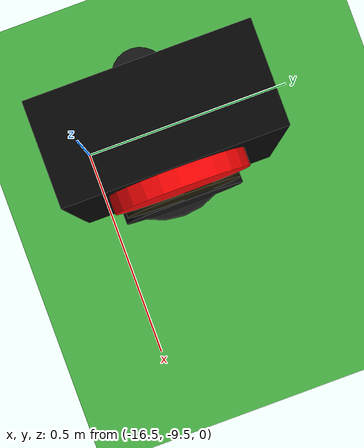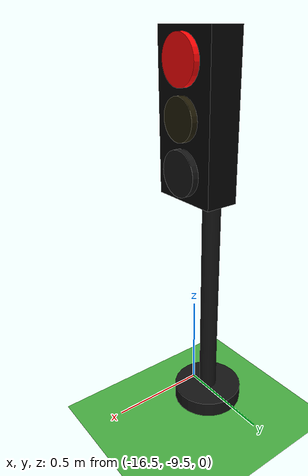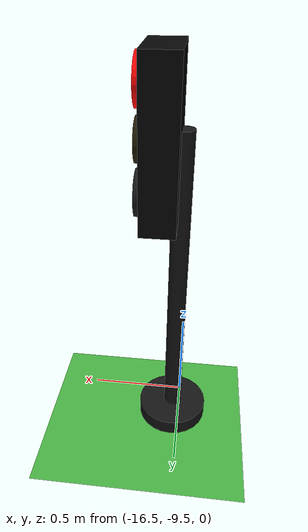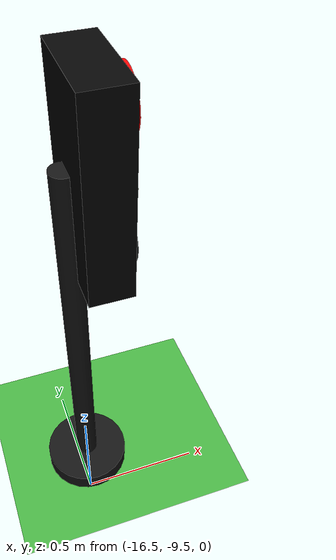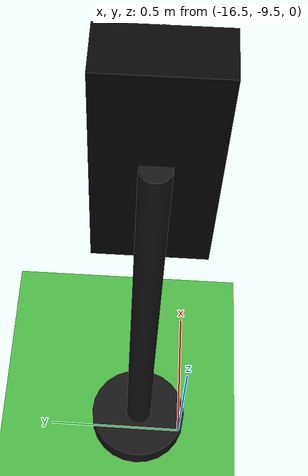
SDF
<sdf version="1.10">
 <world name="city_second">
  <model name="ground_plane">
   <static>true</static>
   <link name="link">
    <collision name="collision">
     <geometry><plane><normal>0 0 1</normal><size>300 300</size></plane></geometry>
    </collision>
    <visual name="visual">
     <geometry><plane><normal>0 0 1</normal><size>300 300</size></plane></geometry>
     <material>
      <ambient>0.280000001 0.689999998 0.25999999 1</ambient>
      <diffuse>0.280000001 0.689999998 0.25999999 1</diffuse>
      <specular>0.0299999993 0.0299999993 0.0299999993 1</specular>
     </material>
    </visual>
    <inertial>
     <mass>1</mass>
     <inertia><ixx>1</ixx><ixy>0</ixy><ixz>0</ixz><iyy>1</iyy><iyz>0</iyz><izz>1</izz></inertia>
    </inertial>
   </link>
  </model>
  <model name="simple_traffic_light_red_east_1">
   <static>true</static>
   <pose>-16.46505069204456 -9.3365546066623484 -6.9388939039072284e-18 0 0 -1.5707999672671704</pose>
   <link name="base">
    <pose>0 0 0.040000000000000001 0 0 0</pose>
    <collision name="collision">
     <geometry>
      <cylinder><radius>0.17999999999999999</radius><length>0.080000000000000002</length></cylinder>
     </geometry>
    </collision>
    <visual name="visual">
     <geometry>
      <cylinder><radius>0.17999999999999999</radius><length>0.080000000000000002</length></cylinder>
     </geometry>
     <material>
      <ambient>0.0799999982 0.0799999982 0.0799999982 1</ambient>
      <diffuse>0.0799999982 0.0799999982 0.0799999982 1</diffuse>
      <specular>0.150000006 0.150000006 0.150000006 1</specular>
      <emissive>0 0 0 1</emissive>
     </material>
    </visual>
    <inertial>
     <mass>1</mass>
     <inertia><ixx>1</ixx><ixy>0</ixy><ixz>0</ixz><iyy>1</iyy><iyz>0</iyz><izz>1</izz></inertia>
    </inertial>
   </link>
   <link name="pole">
    <pose>-7.1054273576010019e-15 7.1054273576010019e-15 0.80000000000000004 0 0 0</pose>
    <collision name="collision">
     <geometry>
      <cylinder><radius>0.044999999999999998</radius><length>1.6000000000000001</length></cylinder>
     </geometry>
    </collision>
    <visual name="visual">
     <geometry>
      <cylinder><radius>0.044999999999999998</radius><length>1.6000000000000001</length></cylinder>
     </geometry>
     <material>
      <ambient>0.0799999982 0.0799999982 0.0799999982 1</ambient>
      <diffuse>0.0799999982 0.0799999982 0.0799999982 1</diffuse>
      <specular>0.150000006 0.150000006 0.150000006 1</specular>
      <emissive>0 0 0 1</emissive>
     </material>
    </visual>
    <inertial>
     <mass>1</mass>
     <inertia><ixx>1</ixx><ixy>0</ixy><ixz>0</ixz><iyy>1</iyy><iyz>0</iyz><izz>1</izz></inertia>
    </inertial>
   </link>
   <link name="signal_box">
    <pose>7.1054273576010019e-15 0.090000000000003411 1.5500000000000003 0 0 0</pose>
    <collision name="collision">
     <geometry><box><size>0.34000000000000002 0.16 0.71999999999999997</size></box></geometry>
    </collision>
    <visual name="visual">
     <geometry><box><size>0.34000000000000002 0.16 0.71999999999999997</size></box></geometry>
     <material>
      <ambient>0.0199999996 0.0199999996 0.0199999996 1</ambient>
      <diffuse>0.0199999996 0.0199999996 0.0199999996 1</diffuse>
      <specular>0.150000006 0.150000006 0.150000006 1</specular>
      <emissive>0 0 0 1</emissive>
     </material>
    </visual>
    <inertial>
     <mass>1</mass>
     <inertia><ixx>1</ixx><ixy>0</ixy><ixz>0</ixz><iyy>1</iyy><iyz>0</iyz><izz>1</izz></inertia>
    </inertial>
   </link>
   <link name="red_lens">
    <pose>-7.1054273576010019e-15 0.18100000000000449 1.78 1.5707963267999998 -8.0126081257495458e-28 3.1401849173675498e-16</pose>
    <collision name="collision">
     <geometry><cylinder><radius>0.105</radius><length>0.035000000000000003</length></cylinder></geometry>
    </collision>
    <visual name="visual">
     <geometry><cylinder><radius>0.105</radius><length>0.035000000000000003</length></cylinder></geometry>
     <material>
      <ambient>1 0.0199999996 0.0199999996 1</ambient>
      <diffuse>1 0.0199999996 0.0199999996 1</diffuse>
      <specular>0.150000006 0.150000006 0.150000006 1</specular>
      <emissive>1 0.0199999996 0.0199999996 1</emissive>
     </material>
    </visual>
    <inertial>
     <mass>1</mass>
     <inertia><ixx>1</ixx><ixy>0</ixy><ixz>0</ixz><iyy>1</iyy><iyz>0</iyz><izz>1</izz></inertia>
    </inertial>
   </link>
   <link name="yellow_lens">
    <pose>-7.1054273576010019e-15 0.18200000000000216 1.5500000000000003 1.5707963267999998 -8.0126081257495458e-28 3.1401849173675498e-16</pose>
    <collision name="collision">
     <geometry>
      <cylinder><radius>0.095000000000000001</radius><length>0.035000000000000003</length></cylinder>
     </geometry>
    </collision>
    <visual name="visual">
     <geometry>
      <cylinder><radius>0.095000000000000001</radius><length>0.035000000000000003</length></cylinder>
     </geometry>
     <material>
      <ambient>0.119999997 0.100000001 0.0199999996 1</ambient>
      <diffuse>0.119999997 0.100000001 0.0199999996 1</diffuse>
      <specular>0.150000006 0.150000006 0.150000006 1</specular>
      <emissive>0 0 0 1</emissive>
     </material>
    </visual>
    <inertial>
     <mass>1</mass>
     <inertia><ixx>1</ixx><ixy>0</ixy><ixz>0</ixz><iyy>1</iyy><iyz>0</iyz><izz>1</izz></inertia>
    </inertial>
   </link>
   <link name="green_lens">
    <pose>0 0.18300000000000693 1.3199999999999998 1.5707963267999998 -8.0126081257495458e-28 3.1401849173675498e-16</pose>
    <collision name="collision">
     <geometry><cylinder><radius>0.105</radius><length>0.035000000000000003</length></cylinder></geometry>
    </collision>
    <visual name="visual">
     <geometry><cylinder><radius>0.105</radius><length>0.035000000000000003</length></cylinder></geometry>
     <material>
      <ambient>0.0799999982 0.0799999982 0.0799999982 1</ambient>
      <diffuse>0.0799999982 0.0799999982 0.0799999982 1</diffuse>
      <specular>0.150000006 0.150000006 0.150000006 1</specular>
      <emissive>0 0 0 1</emissive>
     </material>
    </visual>
    <inertial>
     <mass>1</mass>
     <inertia><ixx>1</ixx><ixy>0</ixy><ixz>0</ixz><iyy>1</iyy><iyz>0</iyz><izz>1</izz></inertia>
    </inertial>
   </link>
   <light name="red_glow" type="point">
    <pose>0 0.28 1.78 0 0 0</pose>
    <diffuse>1 0.02 0.02 1</diffuse>
    <specular>1 0.02 0.02 1</specular>
    <attenuation>
     <range>3.0</range>
     <constant>0.8</constant>
     <linear>0.15</linear>
     <quadratic>0.02</quadratic>
    </attenuation>
    <cast_shadows>false</cast_shadows>
   </light>
  </model>
 </world>
</sdf>
